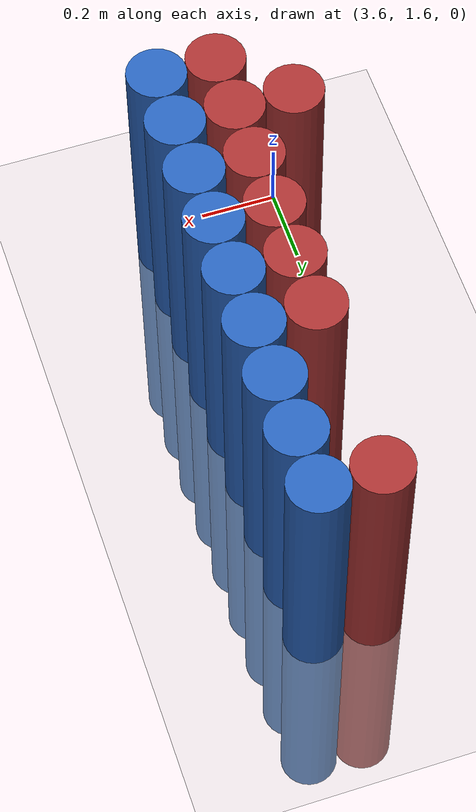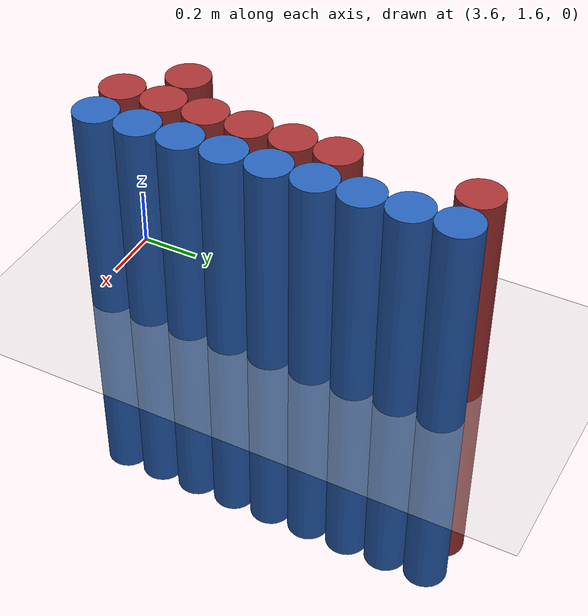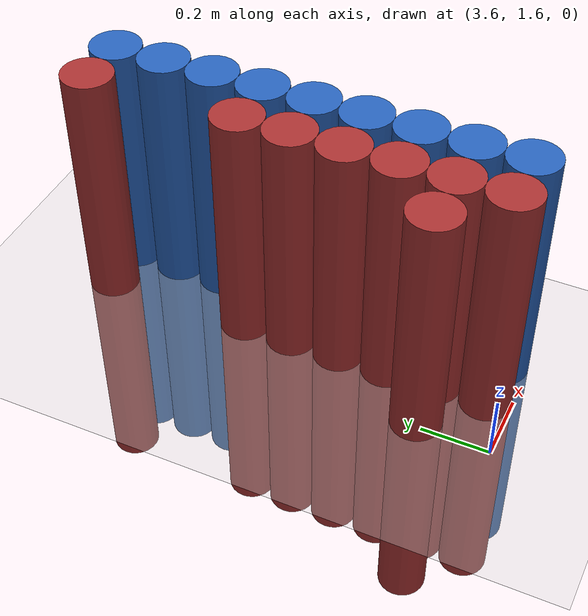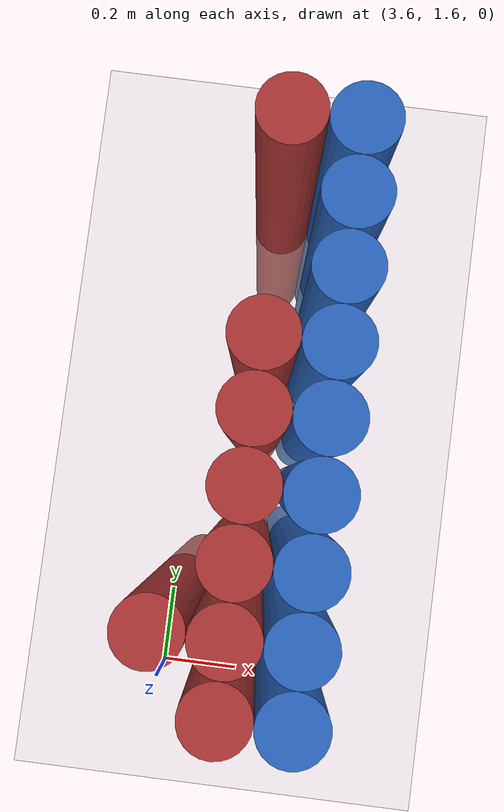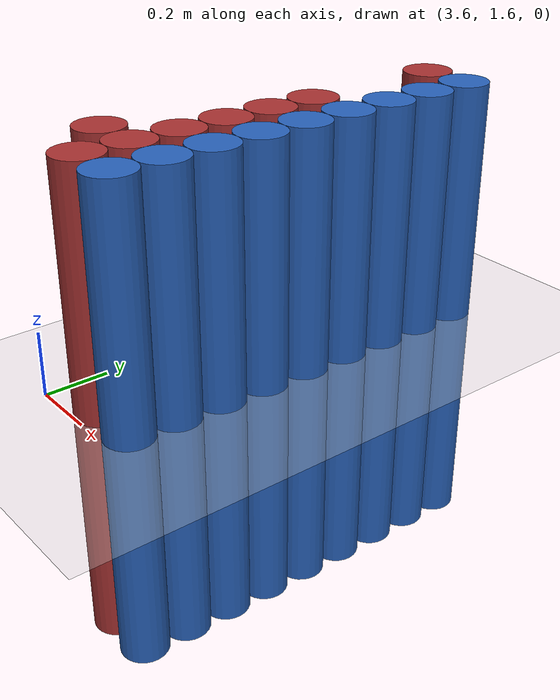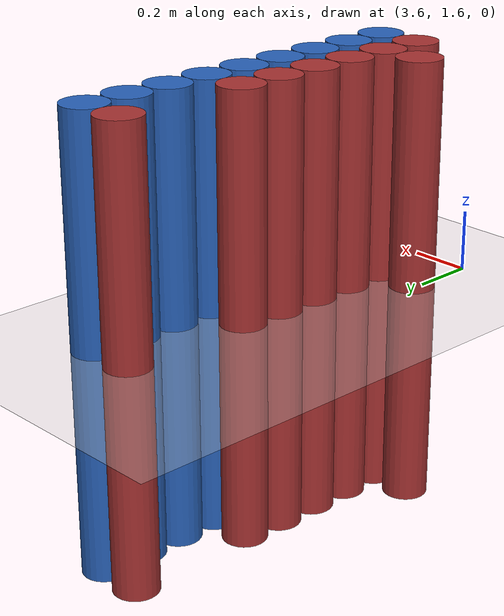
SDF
<sdf version="1.6">
 <world name="default">
  <model name="ground_plane">
   <static>1</static>
   <link name="link">
    <collision name="collision">
     <geometry><plane><normal>0 0 1</normal><size>100 100</size></plane></geometry>
     <surface><friction><ode><mu>100</mu><mu2>50</mu2></ode></friction></surface>
    </collision>
    <visual name="visual">
     <cast_shadows>0</cast_shadows>
     <geometry><plane><normal>0 0 1</normal><size>100 100</size></plane></geometry>
     <material>
      <script><uri>file://media/materials/scripts/gazebo.material</uri><name>Gazebo/Grey</name></script>
     </material>
    </visual>
   </link>
  </model>
  <model name="unit_cylinder_136">
   <static>1</static>
   <pose>3.925000 1.675000 0.000000 0.000000 0.000000 0.000000</pose>
   <link name="link">
    <inertial>
     <mass>1</mass>
     <inertia><ixx>0.145833</ixx><ixy>0</ixy><ixz>0</ixz><iyy>0.145833</iyy><iyz>0</iyz><izz>0.125</izz></inertia>
    </inertial>
    <collision name="collision">
     <geometry><cylinder><radius>0.075000</radius><length>1.5</length></cylinder></geometry>
    </collision>
    <visual name="visual">
     <geometry><cylinder><radius>0.075000</radius><length>1.5</length></cylinder></geometry>
     <material>
      <ambient>0.152000 0.379000 0.720000 1</ambient>
      <diffuse>0.152000 0.379000 0.720000 1</diffuse>
     </material>
     <material>
      <script><name>Gazebo/Grey</name><uri>file://media/materials/scripts/gazebo.material</uri></script>
     </material>
    </visual>
   </link>
  </model>
  <model name="unit_cylinder_138">
   <static>1</static>
   <pose>3.925000 1.825000 0.000000 0.000000 0.000000 0.000000</pose>
   <link name="link">
    <inertial>
     <mass>1</mass>
     <inertia><ixx>0.145833</ixx><ixy>0</ixy><ixz>0</ixz><iyy>0.145833</iyy><iyz>0</iyz><izz>0.125</izz></inertia>
    </inertial>
    <collision name="collision">
     <geometry><cylinder><radius>0.075000</radius><length>1.5</length></cylinder></geometry>
    </collision>
    <visual name="visual">
     <geometry><cylinder><radius>0.075000</radius><length>1.5</length></cylinder></geometry>
     <material>
      <ambient>0.152000 0.379000 0.720000 1</ambient>
      <diffuse>0.152000 0.379000 0.720000 1</diffuse>
     </material>
     <material>
      <script><name>Gazebo/Grey</name><uri>file://media/materials/scripts/gazebo.material</uri></script>
     </material>
    </visual>
   </link>
  </model>
  <model name="unit_cylinder_140">
   <static>1</static>
   <pose>3.925000 1.975000 0.000000 0.000000 0.000000 0.000000</pose>
   <link name="link">
    <inertial>
     <mass>1</mass>
     <inertia><ixx>0.145833</ixx><ixy>0</ixy><ixz>0</ixz><iyy>0.145833</iyy><iyz>0</iyz><izz>0.125</izz></inertia>
    </inertial>
    <collision name="collision">
     <geometry><cylinder><radius>0.075000</radius><length>1.5</length></cylinder></geometry>
    </collision>
    <visual name="visual">
     <geometry><cylinder><radius>0.075000</radius><length>1.5</length></cylinder></geometry>
     <material>
      <ambient>0.152000 0.379000 0.720000 1</ambient>
      <diffuse>0.152000 0.379000 0.720000 1</diffuse>
     </material>
     <material>
      <script><name>Gazebo/Grey</name><uri>file://media/materials/scripts/gazebo.material</uri></script>
     </material>
    </visual>
   </link>
  </model>
  <model name="unit_cylinder_142">
   <static>1</static>
   <pose>3.925000 2.125000 0.000000 0.000000 0.000000 0.000000</pose>
   <link name="link">
    <inertial>
     <mass>1</mass>
     <inertia><ixx>0.145833</ixx><ixy>0</ixy><ixz>0</ixz><iyy>0.145833</iyy><iyz>0</iyz><izz>0.125</izz></inertia>
    </inertial>
    <collision name="collision">
     <geometry><cylinder><radius>0.075000</radius><length>1.5</length></cylinder></geometry>
    </collision>
    <visual name="visual">
     <geometry><cylinder><radius>0.075000</radius><length>1.5</length></cylinder></geometry>
     <material>
      <ambient>0.152000 0.379000 0.720000 1</ambient>
      <diffuse>0.152000 0.379000 0.720000 1</diffuse>
     </material>
     <material>
      <script><name>Gazebo/Grey</name><uri>file://media/materials/scripts/gazebo.material</uri></script>
     </material>
    </visual>
   </link>
  </model>
  <model name="unit_cylinder_144">
   <static>1</static>
   <pose>3.925000 2.275000 0.000000 0.000000 0.000000 0.000000</pose>
   <link name="link">
    <inertial>
     <mass>1</mass>
     <inertia><ixx>0.145833</ixx><ixy>0</ixy><ixz>0</ixz><iyy>0.145833</iyy><iyz>0</iyz><izz>0.125</izz></inertia>
    </inertial>
    <collision name="collision">
     <geometry><cylinder><radius>0.075000</radius><length>1.5</length></cylinder></geometry>
    </collision>
    <visual name="visual">
     <geometry><cylinder><radius>0.075000</radius><length>1.5</length></cylinder></geometry>
     <material>
      <ambient>0.152000 0.379000 0.720000 1</ambient>
      <diffuse>0.152000 0.379000 0.720000 1</diffuse>
     </material>
     <material>
      <script><name>Gazebo/Grey</name><uri>file://media/materials/scripts/gazebo.material</uri></script>
     </material>
    </visual>
   </link>
  </model>
  <model name="unit_cylinder_146">
   <static>1</static>
   <pose>3.925000 2.425000 0.000000 0.000000 0.000000 0.000000</pose>
   <link name="link">
    <inertial>
     <mass>1</mass>
     <inertia><ixx>0.145833</ixx><ixy>0</ixy><ixz>0</ixz><iyy>0.145833</iyy><iyz>0</iyz><izz>0.125</izz></inertia>
    </inertial>
    <collision name="collision">
     <geometry><cylinder><radius>0.075000</radius><length>1.5</length></cylinder></geometry>
    </collision>
    <visual name="visual">
     <geometry><cylinder><radius>0.075000</radius><length>1.5</length></cylinder></geometry>
     <material>
      <ambient>0.152000 0.379000 0.720000 1</ambient>
      <diffuse>0.152000 0.379000 0.720000 1</diffuse>
     </material>
     <material>
      <script><name>Gazebo/Grey</name><uri>file://media/materials/scripts/gazebo.material</uri></script>
     </material>
    </visual>
   </link>
  </model>
  <model name="unit_cylinder_148">
   <static>1</static>
   <pose>3.925000 2.575000 0.000000 0.000000 0.000000 0.000000</pose>
   <link name="link">
    <inertial>
     <mass>1</mass>
     <inertia><ixx>0.145833</ixx><ixy>0</ixy><ixz>0</ixz><iyy>0.145833</iyy><iyz>0</iyz><izz>0.125</izz></inertia>
    </inertial>
    <collision name="collision">
     <geometry><cylinder><radius>0.075000</radius><length>1.5</length></cylinder></geometry>
    </collision>
    <visual name="visual">
     <geometry><cylinder><radius>0.075000</radius><length>1.5</length></cylinder></geometry>
     <material>
      <ambient>0.152000 0.379000 0.720000 1</ambient>
      <diffuse>0.152000 0.379000 0.720000 1</diffuse>
     </material>
     <material>
      <script><name>Gazebo/Grey</name><uri>file://media/materials/scripts/gazebo.material</uri></script>
     </material>
    </visual>
   </link>
  </model>
  <model name="unit_cylinder_150">
   <static>1</static>
   <pose>3.925000 2.725000 0.000000 0.000000 0.000000 0.000000</pose>
   <link name="link">
    <inertial>
     <mass>1</mass>
     <inertia><ixx>0.145833</ixx><ixy>0</ixy><ixz>0</ixz><iyy>0.145833</iyy><iyz>0</iyz><izz>0.125</izz></inertia>
    </inertial>
    <collision name="collision">
     <geometry><cylinder><radius>0.075000</radius><length>1.5</length></cylinder></geometry>
    </collision>
    <visual name="visual">
     <geometry><cylinder><radius>0.075000</radius><length>1.5</length></cylinder></geometry>
     <material>
      <ambient>0.152000 0.379000 0.720000 1</ambient>
      <diffuse>0.152000 0.379000 0.720000 1</diffuse>
     </material>
     <material>
      <script><name>Gazebo/Grey</name><uri>file://media/materials/scripts/gazebo.material</uri></script>
     </material>
    </visual>
   </link>
  </model>
  <model name="unit_cylinder_152">
   <static>1</static>
   <pose>3.925000 2.875000 0.000000 0.000000 0.000000 0.000000</pose>
   <link name="link">
    <inertial>
     <mass>1</mass>
     <inertia><ixx>0.145833</ixx><ixy>0</ixy><ixz>0</ixz><iyy>0.145833</iyy><iyz>0</iyz><izz>0.125</izz></inertia>
    </inertial>
    <collision name="collision">
     <geometry><cylinder><radius>0.075000</radius><length>1.5</length></cylinder></geometry>
    </collision>
    <visual name="visual">
     <geometry><cylinder><radius>0.075000</radius><length>1.5</length></cylinder></geometry>
     <material>
      <ambient>0.152000 0.379000 0.720000 1</ambient>
      <diffuse>0.152000 0.379000 0.720000 1</diffuse>
     </material>
     <material>
      <script><name>Gazebo/Grey</name><uri>file://media/materials/scripts/gazebo.material</uri></script>
     </material>
    </visual>
   </link>
  </model>
  <model name="unit_cylinder_293">
   <static>1</static>
   <pose>3.625000 1.825000 0.000000 0.000000 0.000000 0.000000</pose>
   <link name="link">
    <inertial>
     <mass>1</mass>
     <inertia><ixx>0.145833</ixx><ixy>0</ixy><ixz>0</ixz><iyy>0.145833</iyy><iyz>0</iyz><izz>0.125</izz></inertia>
    </inertial>
    <collision name="collision">
     <geometry><cylinder><radius>0.075000</radius><length>1.5</length></cylinder></geometry>
    </collision>
    <visual name="visual">
     <geometry><cylinder><radius>0.075000</radius><length>1.5</length></cylinder></geometry>
     <material>
      <ambient>0.648000 0.192000 0.192000 1</ambient>
      <diffuse>0.648000 0.192000 0.192000 1</diffuse>
     </material>
     <material>
      <script><name>Gazebo/Grey</name><uri>file://media/materials/scripts/gazebo.material</uri></script>
     </material>
    </visual>
   </link>
  </model>
  <model name="unit_cylinder_300">
   <static>1</static>
   <pose>3.775000 1.675000 0.000000 0.000000 0.000000 0.000000</pose>
   <link name="link">
    <inertial>
     <mass>1</mass>
     <inertia><ixx>0.145833</ixx><ixy>0</ixy><ixz>0</ixz><iyy>0.145833</iyy><iyz>0</iyz><izz>0.125</izz></inertia>
    </inertial>
    <collision name="collision">
     <geometry><cylinder><radius>0.075000</radius><length>1.5</length></cylinder></geometry>
    </collision>
    <visual name="visual">
     <geometry><cylinder><radius>0.075000</radius><length>1.5</length></cylinder></geometry>
     <material>
      <ambient>0.648000 0.192000 0.192000 1</ambient>
      <diffuse>0.648000 0.192000 0.192000 1</diffuse>
     </material>
     <material>
      <script><name>Gazebo/Grey</name><uri>file://media/materials/scripts/gazebo.material</uri></script>
     </material>
    </visual>
   </link>
  </model>
  <model name="unit_cylinder_301">
   <static>1</static>
   <pose>3.775000 1.825000 0.000000 0.000000 0.000000 0.000000</pose>
   <link name="link">
    <inertial>
     <mass>1</mass>
     <inertia><ixx>0.145833</ixx><ixy>0</ixy><ixz>0</ixz><iyy>0.145833</iyy><iyz>0</iyz><izz>0.125</izz></inertia>
    </inertial>
    <collision name="collision">
     <geometry><cylinder><radius>0.075000</radius><length>1.5</length></cylinder></geometry>
    </collision>
    <visual name="visual">
     <geometry><cylinder><radius>0.075000</radius><length>1.5</length></cylinder></geometry>
     <material>
      <ambient>0.648000 0.192000 0.192000 1</ambient>
      <diffuse>0.648000 0.192000 0.192000 1</diffuse>
     </material>
     <material>
      <script><name>Gazebo/Grey</name><uri>file://media/materials/scripts/gazebo.material</uri></script>
     </material>
    </visual>
   </link>
  </model>
  <model name="unit_cylinder_302">
   <static>1</static>
   <pose>3.775000 1.975000 0.000000 0.000000 0.000000 0.000000</pose>
   <link name="link">
    <inertial>
     <mass>1</mass>
     <inertia><ixx>0.145833</ixx><ixy>0</ixy><ixz>0</ixz><iyy>0.145833</iyy><iyz>0</iyz><izz>0.125</izz></inertia>
    </inertial>
    <collision name="collision">
     <geometry><cylinder><radius>0.075000</radius><length>1.5</length></cylinder></geometry>
    </collision>
    <visual name="visual">
     <geometry><cylinder><radius>0.075000</radius><length>1.5</length></cylinder></geometry>
     <material>
      <ambient>0.648000 0.192000 0.192000 1</ambient>
      <diffuse>0.648000 0.192000 0.192000 1</diffuse>
     </material>
     <material>
      <script><name>Gazebo/Grey</name><uri>file://media/materials/scripts/gazebo.material</uri></script>
     </material>
    </visual>
   </link>
  </model>
  <model name="unit_cylinder_303">
   <static>1</static>
   <pose>3.775000 2.125000 0.000000 0.000000 0.000000 0.000000</pose>
   <link name="link">
    <inertial>
     <mass>1</mass>
     <inertia><ixx>0.145833</ixx><ixy>0</ixy><ixz>0</ixz><iyy>0.145833</iyy><iyz>0</iyz><izz>0.125</izz></inertia>
    </inertial>
    <collision name="collision">
     <geometry><cylinder><radius>0.075000</radius><length>1.5</length></cylinder></geometry>
    </collision>
    <visual name="visual">
     <geometry><cylinder><radius>0.075000</radius><length>1.5</length></cylinder></geometry>
     <material>
      <ambient>0.648000 0.192000 0.192000 1</ambient>
      <diffuse>0.648000 0.192000 0.192000 1</diffuse>
     </material>
     <material>
      <script><name>Gazebo/Grey</name><uri>file://media/materials/scripts/gazebo.material</uri></script>
     </material>
    </visual>
   </link>
  </model>
  <model name="unit_cylinder_304">
   <static>1</static>
   <pose>3.775000 2.275000 0.000000 0.000000 0.000000 0.000000</pose>
   <link name="link">
    <inertial>
     <mass>1</mass>
     <inertia><ixx>0.145833</ixx><ixy>0</ixy><ixz>0</ixz><iyy>0.145833</iyy><iyz>0</iyz><izz>0.125</izz></inertia>
    </inertial>
    <collision name="collision">
     <geometry><cylinder><radius>0.075000</radius><length>1.5</length></cylinder></geometry>
    </collision>
    <visual name="visual">
     <geometry><cylinder><radius>0.075000</radius><length>1.5</length></cylinder></geometry>
     <material>
      <ambient>0.648000 0.192000 0.192000 1</ambient>
      <diffuse>0.648000 0.192000 0.192000 1</diffuse>
     </material>
     <material>
      <script><name>Gazebo/Grey</name><uri>file://media/materials/scripts/gazebo.material</uri></script>
     </material>
    </visual>
   </link>
  </model>
  <model name="unit_cylinder_305">
   <static>1</static>
   <pose>3.775000 2.425000 0.000000 0.000000 0.000000 0.000000</pose>
   <link name="link">
    <inertial>
     <mass>1</mass>
     <inertia><ixx>0.145833</ixx><ixy>0</ixy><ixz>0</ixz><iyy>0.145833</iyy><iyz>0</iyz><izz>0.125</izz></inertia>
    </inertial>
    <collision name="collision">
     <geometry><cylinder><radius>0.075000</radius><length>1.5</length></cylinder></geometry>
    </collision>
    <visual name="visual">
     <geometry><cylinder><radius>0.075000</radius><length>1.5</length></cylinder></geometry>
     <material>
      <ambient>0.648000 0.192000 0.192000 1</ambient>
      <diffuse>0.648000 0.192000 0.192000 1</diffuse>
     </material>
     <material>
      <script><name>Gazebo/Grey</name><uri>file://media/materials/scripts/gazebo.material</uri></script>
     </material>
    </visual>
   </link>
  </model>
  <model name="unit_cylinder_306">
   <static>1</static>
   <pose>3.775000 2.875000 0.000000 0.000000 0.000000 0.000000</pose>
   <link name="link">
    <inertial>
     <mass>1</mass>
     <inertia><ixx>0.145833</ixx><ixy>0</ixy><ixz>0</ixz><iyy>0.145833</iyy><iyz>0</iyz><izz>0.125</izz></inertia>
    </inertial>
    <collision name="collision">
     <geometry><cylinder><radius>0.075000</radius><length>1.5</length></cylinder></geometry>
    </collision>
    <visual name="visual">
     <geometry><cylinder><radius>0.075000</radius><length>1.5</length></cylinder></geometry>
     <material>
      <ambient>0.648000 0.192000 0.192000 1</ambient>
      <diffuse>0.648000 0.192000 0.192000 1</diffuse>
     </material>
     <material>
      <script><name>Gazebo/Grey</name><uri>file://media/materials/scripts/gazebo.material</uri></script>
     </material>
    </visual>
   </link>
  </model>
  <model name="unit_cylinder_331">
   <static>1</static>
   <pose>3.925000 1.675000 0.000000 0.000000 0.000000 0.000000</pose>
   <link name="link">
    <inertial>
     <mass>1</mass>
     <inertia><ixx>0.145833</ixx><ixy>0</ixy><ixz>0</ixz><iyy>0.145833</iyy><iyz>0</iyz><izz>0.125</izz></inertia>
    </inertial>
    <collision name="collision">
     <geometry><cylinder><radius>0.075000</radius><length>1.5</length></cylinder></geometry>
    </collision>
    <visual name="visual">
     <geometry><cylinder><radius>0.075000</radius><length>1.5</length></cylinder></geometry>
     <material>
      <ambient>0.152000 0.379000 0.720000 1</ambient>
      <diffuse>0.152000 0.379000 0.720000 1</diffuse>
     </material>
     <material>
      <script><name>Gazebo/Grey</name><uri>file://media/materials/scripts/gazebo.material</uri></script>
     </material>
    </visual>
   </link>
  </model>
  <model name="unit_cylinder_332">
   <static>1</static>
   <pose>3.925000 1.825000 0.000000 0.000000 0.000000 0.000000</pose>
   <link name="link">
    <inertial>
     <mass>1</mass>
     <inertia><ixx>0.145833</ixx><ixy>0</ixy><ixz>0</ixz><iyy>0.145833</iyy><iyz>0</iyz><izz>0.125</izz></inertia>
    </inertial>
    <collision name="collision">
     <geometry><cylinder><radius>0.075000</radius><length>1.5</length></cylinder></geometry>
    </collision>
    <visual name="visual">
     <geometry><cylinder><radius>0.075000</radius><length>1.5</length></cylinder></geometry>
     <material>
      <ambient>0.152000 0.379000 0.720000 1</ambient>
      <diffuse>0.152000 0.379000 0.720000 1</diffuse>
     </material>
     <material>
      <script><name>Gazebo/Grey</name><uri>file://media/materials/scripts/gazebo.material</uri></script>
     </material>
    </visual>
   </link>
  </model>
  <model name="unit_cylinder_333">
   <static>1</static>
   <pose>3.925000 1.975000 0.000000 0.000000 0.000000 0.000000</pose>
   <link name="link">
    <inertial>
     <mass>1</mass>
     <inertia><ixx>0.145833</ixx><ixy>0</ixy><ixz>0</ixz><iyy>0.145833</iyy><iyz>0</iyz><izz>0.125</izz></inertia>
    </inertial>
    <collision name="collision">
     <geometry><cylinder><radius>0.075000</radius><length>1.5</length></cylinder></geometry>
    </collision>
    <visual name="visual">
     <geometry><cylinder><radius>0.075000</radius><length>1.5</length></cylinder></geometry>
     <material>
      <ambient>0.152000 0.379000 0.720000 1</ambient>
      <diffuse>0.152000 0.379000 0.720000 1</diffuse>
     </material>
     <material>
      <script><name>Gazebo/Grey</name><uri>file://media/materials/scripts/gazebo.material</uri></script>
     </material>
    </visual>
   </link>
  </model>
  <model name="unit_cylinder_334">
   <static>1</static>
   <pose>3.925000 2.125000 0.000000 0.000000 0.000000 0.000000</pose>
   <link name="link">
    <inertial>
     <mass>1</mass>
     <inertia><ixx>0.145833</ixx><ixy>0</ixy><ixz>0</ixz><iyy>0.145833</iyy><iyz>0</iyz><izz>0.125</izz></inertia>
    </inertial>
    <collision name="collision">
     <geometry><cylinder><radius>0.075000</radius><length>1.5</length></cylinder></geometry>
    </collision>
    <visual name="visual">
     <geometry><cylinder><radius>0.075000</radius><length>1.5</length></cylinder></geometry>
     <material>
      <ambient>0.152000 0.379000 0.720000 1</ambient>
      <diffuse>0.152000 0.379000 0.720000 1</diffuse>
     </material>
     <material>
      <script><name>Gazebo/Grey</name><uri>file://media/materials/scripts/gazebo.material</uri></script>
     </material>
    </visual>
   </link>
  </model>
  <model name="unit_cylinder_335">
   <static>1</static>
   <pose>3.925000 2.275000 0.000000 0.000000 0.000000 0.000000</pose>
   <link name="link">
    <inertial>
     <mass>1</mass>
     <inertia><ixx>0.145833</ixx><ixy>0</ixy><ixz>0</ixz><iyy>0.145833</iyy><iyz>0</iyz><izz>0.125</izz></inertia>
    </inertial>
    <collision name="collision">
     <geometry><cylinder><radius>0.075000</radius><length>1.5</length></cylinder></geometry>
    </collision>
    <visual name="visual">
     <geometry><cylinder><radius>0.075000</radius><length>1.5</length></cylinder></geometry>
     <material>
      <ambient>0.152000 0.379000 0.720000 1</ambient>
      <diffuse>0.152000 0.379000 0.720000 1</diffuse>
     </material>
     <material>
      <script><name>Gazebo/Grey</name><uri>file://media/materials/scripts/gazebo.material</uri></script>
     </material>
    </visual>
   </link>
  </model>
  <model name="unit_cylinder_336">
   <static>1</static>
   <pose>3.925000 2.425000 0.000000 0.000000 0.000000 0.000000</pose>
   <link name="link">
    <inertial>
     <mass>1</mass>
     <inertia><ixx>0.145833</ixx><ixy>0</ixy><ixz>0</ixz><iyy>0.145833</iyy><iyz>0</iyz><izz>0.125</izz></inertia>
    </inertial>
    <collision name="collision">
     <geometry><cylinder><radius>0.075000</radius><length>1.5</length></cylinder></geometry>
    </collision>
    <visual name="visual">
     <geometry><cylinder><radius>0.075000</radius><length>1.5</length></cylinder></geometry>
     <material>
      <ambient>0.152000 0.379000 0.720000 1</ambient>
      <diffuse>0.152000 0.379000 0.720000 1</diffuse>
     </material>
     <material>
      <script><name>Gazebo/Grey</name><uri>file://media/materials/scripts/gazebo.material</uri></script>
     </material>
    </visual>
   </link>
  </model>
  <model name="unit_cylinder_337">
   <static>1</static>
   <pose>3.925000 2.575000 0.000000 0.000000 0.000000 0.000000</pose>
   <link name="link">
    <inertial>
     <mass>1</mass>
     <inertia><ixx>0.145833</ixx><ixy>0</ixy><ixz>0</ixz><iyy>0.145833</iyy><iyz>0</iyz><izz>0.125</izz></inertia>
    </inertial>
    <collision name="collision">
     <geometry><cylinder><radius>0.075000</radius><length>1.5</length></cylinder></geometry>
    </collision>
    <visual name="visual">
     <geometry><cylinder><radius>0.075000</radius><length>1.5</length></cylinder></geometry>
     <material>
      <ambient>0.152000 0.379000 0.720000 1</ambient>
      <diffuse>0.152000 0.379000 0.720000 1</diffuse>
     </material>
     <material>
      <script><name>Gazebo/Grey</name><uri>file://media/materials/scripts/gazebo.material</uri></script>
     </material>
    </visual>
   </link>
  </model>
  <model name="unit_cylinder_338">
   <static>1</static>
   <pose>3.925000 2.725000 0.000000 0.000000 0.000000 0.000000</pose>
   <link name="link">
    <inertial>
     <mass>1</mass>
     <inertia><ixx>0.145833</ixx><ixy>0</ixy><ixz>0</ixz><iyy>0.145833</iyy><iyz>0</iyz><izz>0.125</izz></inertia>
    </inertial>
    <collision name="collision">
     <geometry><cylinder><radius>0.075000</radius><length>1.5</length></cylinder></geometry>
    </collision>
    <visual name="visual">
     <geometry><cylinder><radius>0.075000</radius><length>1.5</length></cylinder></geometry>
     <material>
      <ambient>0.152000 0.379000 0.720000 1</ambient>
      <diffuse>0.152000 0.379000 0.720000 1</diffuse>
     </material>
     <material>
      <script><name>Gazebo/Grey</name><uri>file://media/materials/scripts/gazebo.material</uri></script>
     </material>
    </visual>
   </link>
  </model>
  <model name="unit_cylinder_339">
   <static>1</static>
   <pose>3.925000 2.875000 0.000000 0.000000 0.000000 0.000000</pose>
   <link name="link">
    <inertial>
     <mass>1</mass>
     <inertia><ixx>0.145833</ixx><ixy>0</ixy><ixz>0</ixz><iyy>0.145833</iyy><iyz>0</iyz><izz>0.125</izz></inertia>
    </inertial>
    <collision name="collision">
     <geometry><cylinder><radius>0.075000</radius><length>1.5</length></cylinder></geometry>
    </collision>
    <visual name="visual">
     <geometry><cylinder><radius>0.075000</radius><length>1.5</length></cylinder></geometry>
     <material>
      <ambient>0.152000 0.379000 0.720000 1</ambient>
      <diffuse>0.152000 0.379000 0.720000 1</diffuse>
     </material>
     <material>
      <script><name>Gazebo/Grey</name><uri>file://media/materials/scripts/gazebo.material</uri></script>
     </material>
    </visual>
   </link>
  </model>
 </world>
</sdf>
